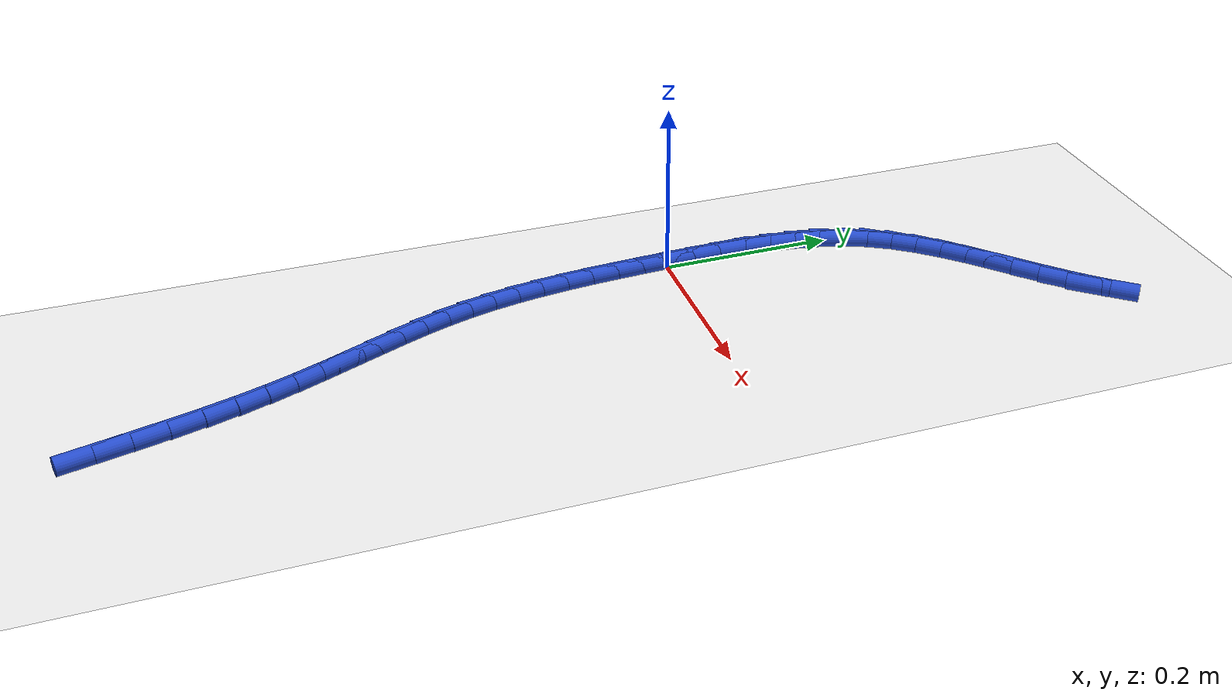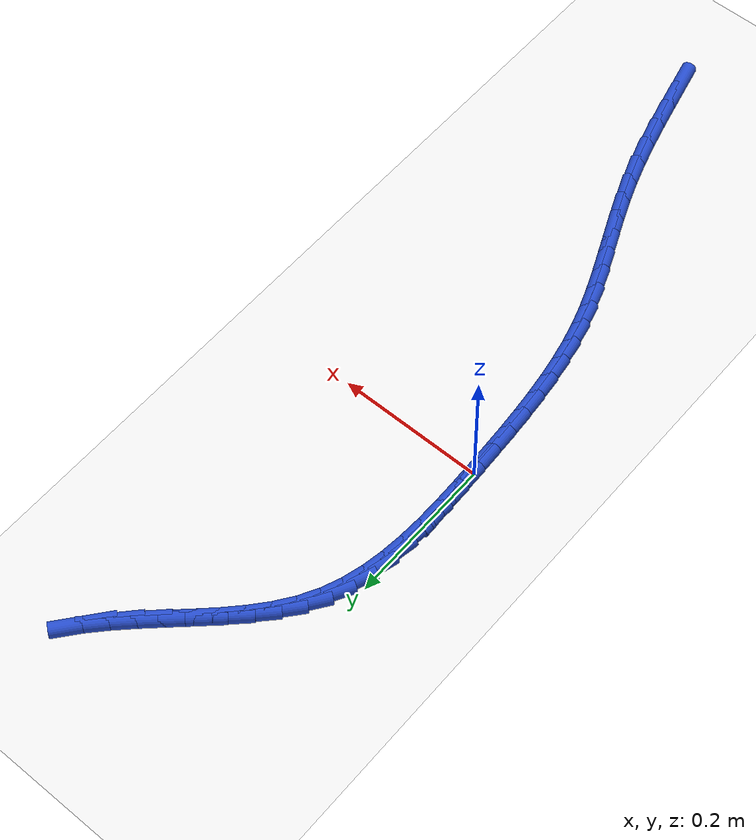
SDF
<sdf version="1.6">
 <world name="default">
  <model name="ground_plane">
   <static>1</static>
   <link name="link">
    <collision name="collision">
     <geometry><plane><normal>0 0 1</normal><size>100 100</size></plane></geometry>
     <surface><friction><ode><mu>100</mu><mu2>50</mu2></ode></friction></surface>
    </collision>
    <visual name="visual">
     <cast_shadows>0</cast_shadows>
     <geometry><plane><normal>0 0 1</normal><size>100 100</size></plane></geometry>
     <material>
      <script><uri>file://media/materials/scripts/gazebo.material</uri><name>Gazebo/WhiteGlow</name></script>
     </material>
    </visual>
   </link>
  </model>
  <model name="line">
   <link name="link_0">
    <pose>-1.3877787807814457e-17 -2.0816681711721685e-17 0.01 0 1.57 -1.5352226117898293</pose>
    <collision name="collision">
     <geometry><cylinder><radius>0.01</radius><length>0.08</length></cylinder></geometry>
    </collision>
    <visual name="visual">
     <material>
      <script><name>Gazebo/Blue</name><uri>file://media/materials/scripts/gazebo.material</uri></script>
     </material>
     <geometry><cylinder><radius>0.01</radius><length>0.08</length></cylinder></geometry>
    </visual>
   </link>
   <link name="link_1">
    <pose>-0.001136323410570814 0.0319293060891615 0.01 0 1.57 -1.5522565801094093</pose>
    <collision name="collision">
     <geometry><cylinder><radius>0.01</radius><length>0.08</length></cylinder></geometry>
    </collision>
    <visual name="visual">
     <material>
      <script><name>Gazebo/Blue</name><uri>file://media/materials/scripts/gazebo.material</uri></script>
     </material>
     <geometry><cylinder><radius>0.01</radius><length>0.08</length></cylinder></geometry>
    </visual>
   </link>
   <link name="link_2">
    <pose>-0.001728566261842261 0.06387014131679172 0.01 0 1.57 1.5598440946815808</pose>
    <collision name="collision">
     <geometry><cylinder><radius>0.01</radius><length>0.08</length></cylinder></geometry>
    </collision>
    <visual name="visual">
     <material>
      <script><name>Gazebo/Blue</name><uri>file://media/materials/scripts/gazebo.material</uri></script>
     </material>
     <geometry><cylinder><radius>0.01</radius><length>0.08</length></cylinder></geometry>
    </visual>
   </link>
   <link name="link_3">
    <pose>-0.0013812105346205877 0.09558439234035589 0.01 0 1.57 1.5170083752851309</pose>
    <collision name="collision">
     <geometry><cylinder><radius>0.01</radius><length>0.08</length></cylinder></geometry>
    </collision>
    <visual name="visual">
     <material>
      <script><name>Gazebo/Blue</name><uri>file://media/materials/scripts/gazebo.material</uri></script>
     </material>
     <geometry><cylinder><radius>0.01</radius><length>0.08</length></cylinder></geometry>
    </visual>
   </link>
   <link name="link_4">
    <pose>0.00030126179028797627 0.12683394581731922 0.01 0 1.57 1.459523945433175</pose>
    <collision name="collision">
     <geometry><cylinder><radius>0.01</radius><length>0.08</length></cylinder></geometry>
    </collision>
    <visual name="visual">
     <material>
      <script><name>Gazebo/Blue</name><uri>file://media/materials/scripts/gazebo.material</uri></script>
     </material>
     <geometry><cylinder><radius>0.01</radius><length>0.08</length></cylinder></geometry>
    </visual>
   </link>
   <link name="link_5">
    <pose>0.0037143687320771966 0.15738068840514685 0.01 0 1.57 1.3858344620848655</pose>
    <collision name="collision">
     <geometry><cylinder><radius>0.01</radius><length>0.08</length></cylinder></geometry>
    </collision>
    <visual name="visual">
     <material>
      <script><name>Gazebo/Blue</name><uri>file://media/materials/scripts/gazebo.material</uri></script>
     </material>
     <geometry><cylinder><radius>0.01</radius><length>0.08</length></cylinder></geometry>
    </visual>
   </link>
   <link name="link_6">
    <pose>0.00925362830994085 0.18698650676130396 0.01 0 1.57 1.2944819344400007</pose>
    <collision name="collision">
     <geometry><cylinder><radius>0.01</radius><length>0.08</length></cylinder></geometry>
    </collision>
    <visual name="visual">
     <material>
      <script><name>Gazebo/Blue</name><uri>file://media/materials/scripts/gazebo.material</uri></script>
     </material>
     <geometry><cylinder><radius>0.01</radius><length>0.08</length></cylinder></geometry>
    </visual>
   </link>
   <link name="link_7">
    <pose>0.0173145585430727 0.21541328754325575 0.01 0 1.57 1.1847402585053743</pose>
    <collision name="collision">
     <geometry><cylinder><radius>0.01</radius><length>0.08</length></cylinder></geometry>
    </collision>
    <visual name="visual">
     <material>
      <script><name>Gazebo/Blue</name><uri>file://media/materials/scripts/gazebo.material</uri></script>
     </material>
     <geometry><cylinder><radius>0.01</radius><length>0.08</length></cylinder></geometry>
    </visual>
   </link>
   <link name="link_8">
    <pose>0.02829267745066652 0.24242291740846747 0.01 0 1.57 1.0603880104524492</pose>
    <collision name="collision">
     <geometry><cylinder><radius>0.01</radius><length>0.08</length></cylinder></geometry>
    </collision>
    <visual name="visual">
     <material>
      <script><name>Gazebo/Blue</name><uri>file://media/materials/scripts/gazebo.material</uri></script>
     </material>
     <geometry><cylinder><radius>0.01</radius><length>0.08</length></cylinder></geometry>
    </visual>
   </link>
   <link name="link_9">
    <pose>0.0425114001692829 0.26781825942759047 0.01 0 1.57 0.9483036169660058</pose>
    <collision name="collision">
     <geometry><cylinder><radius>0.01</radius><length>0.08</length></cylinder></geometry>
    </collision>
    <visual name="visual">
     <material>
      <script><name>Gazebo/Blue</name><uri>file://media/materials/scripts/gazebo.material</uri></script>
     </material>
     <geometry><cylinder><radius>0.01</radius><length>0.08</length></cylinder></geometry>
    </visual>
   </link>
   <link name="link_10">
    <pose>0.05968537244002771 0.2917481432314513 0.01 0 1.57 0.8620050192902241</pose>
    <collision name="collision">
     <geometry><cylinder><radius>0.01</radius><length>0.08</length></cylinder></geometry>
    </collision>
    <visual name="visual">
     <material>
      <script><name>Gazebo/Blue</name><uri>file://media/materials/scripts/gazebo.material</uri></script>
     </material>
     <geometry><cylinder><radius>0.01</radius><length>0.08</length></cylinder></geometry>
    </visual>
   </link>
   <link name="link_11">
    <pose>0.07922357982822038 0.3145351065912478 0.01 0 1.57 0.8006190132701884</pose>
    <collision name="collision">
     <geometry><cylinder><radius>0.01</radius><length>0.08</length></cylinder></geometry>
    </collision>
    <visual name="visual">
     <material>
      <script><name>Gazebo/Blue</name><uri>file://media/materials/scripts/gazebo.material</uri></script>
     </material>
     <geometry><cylinder><radius>0.01</radius><length>0.08</length></cylinder></geometry>
    </visual>
   </link>
   <link name="link_12">
    <pose>0.10053270528436065 0.33650299586519655 0.01 0 1.57 0.7623340318087835</pose>
    <collision name="collision">
     <geometry><cylinder><radius>0.01</radius><length>0.08</length></cylinder></geometry>
    </collision>
    <visual name="visual">
     <material>
      <script><name>Gazebo/Blue</name><uri>file://media/materials/scripts/gazebo.material</uri></script>
     </material>
     <geometry><cylinder><radius>0.01</radius><length>0.08</length></cylinder></geometry>
    </visual>
   </link>
   <link name="link_13">
    <pose>0.12301943175894825 0.35797565741151466 0.01 0 1.57 0.7455356103986092</pose>
    <collision name="collision">
     <geometry><cylinder><radius>0.01</radius><length>0.08</length></cylinder></geometry>
    </collision>
    <visual name="visual">
     <material>
      <script><name>Gazebo/Blue</name><uri>file://media/materials/scripts/gazebo.material</uri></script>
     </material>
     <geometry><cylinder><radius>0.01</radius><length>0.08</length></cylinder></geometry>
    </visual>
   </link>
   <link name="link_14">
    <pose>0.14609044220248293 0.37927693758841907 0.01 0 1.57 0.7492865835895974</pose>
    <collision name="collision">
     <geometry><cylinder><radius>0.01</radius><length>0.08</length></cylinder></geometry>
    </collision>
    <visual name="visual">
     <material>
      <script><name>Gazebo/Blue</name><uri>file://media/materials/scripts/gazebo.material</uri></script>
     </material>
     <geometry><cylinder><radius>0.01</radius><length>0.08</length></cylinder></geometry>
    </visual>
   </link>
   <link name="link_15">
    <pose>0.1691524195654644 0.4007306827541263 0.01 0 1.57 0.7734686889386954</pose>
    <collision name="collision">
     <geometry><cylinder><radius>0.01</radius><length>0.08</length></cylinder></geometry>
    </collision>
    <visual name="visual">
     <material>
      <script><name>Gazebo/Blue</name><uri>file://media/materials/scripts/gazebo.material</uri></script>
     </material>
     <geometry><cylinder><radius>0.01</radius><length>0.08</length></cylinder></geometry>
    </visual>
   </link>
   <link name="link_16">
    <pose>0.19161204679839247 0.42266073926685366 0.01 0 1.57 0.818714202508982</pose>
    <collision name="collision">
     <geometry><cylinder><radius>0.01</radius><length>0.08</length></cylinder></geometry>
    </collision>
    <visual name="visual">
     <material>
      <script><name>Gazebo/Blue</name><uri>file://media/materials/scripts/gazebo.material</uri></script>
     </material>
     <geometry><cylinder><radius>0.01</radius><length>0.08</length></cylinder></geometry>
    </visual>
   </link>
   <link name="link_17">
    <pose>0.21287600685176686 0.44539095348481805 0.01 0 1.57 0.8861252138588503</pose>
    <collision name="collision">
     <geometry><cylinder><radius>0.01</radius><length>0.08</length></cylinder></geometry>
    </collision>
    <visual name="visual">
     <material>
      <script><name>Gazebo/Blue</name><uri>file://media/materials/scripts/gazebo.material</uri></script>
     </material>
     <geometry><cylinder><radius>0.01</radius><length>0.08</length></cylinder></geometry>
    </visual>
   </link>
   <link name="link_229">
    <pose>0.16515125983142878 -0.6381545841234288 0.01 0 1.57 -1.3394345069656612</pose>
    <collision name="collision">
     <geometry><cylinder><radius>0.01</radius><length>0.08</length></cylinder></geometry>
    </collision>
    <visual name="visual">
     <material>
      <script><name>Gazebo/Blue</name><uri>file://media/materials/scripts/gazebo.material</uri></script>
     </material>
     <geometry><cylinder><radius>0.01</radius><length>0.08</length></cylinder></geometry>
    </visual>
   </link>
   <link name="link_230">
    <pose>0.15671319338873946 -0.6023363666139996 0.01 0 1.57 -1.3305966678972605</pose>
    <collision name="collision">
     <geometry><cylinder><radius>0.01</radius><length>0.08</length></cylinder></geometry>
    </collision>
    <visual name="visual">
     <material>
      <script><name>Gazebo/Blue</name><uri>file://media/materials/scripts/gazebo.material</uri></script>
     </material>
     <geometry><cylinder><radius>0.01</radius><length>0.08</length></cylinder></geometry>
    </visual>
   </link>
   <link name="link_231">
    <pose>0.14802790289141643 -0.5668758278491823 0.01 0 1.57 -1.3134153081161946</pose>
    <collision name="collision">
     <geometry><cylinder><radius>0.01</radius><length>0.08</length></cylinder></geometry>
    </collision>
    <visual name="visual">
     <material>
      <script><name>Gazebo/Blue</name><uri>file://media/materials/scripts/gazebo.material</uri></script>
     </material>
     <geometry><cylinder><radius>0.01</radius><length>0.08</length></cylinder></geometry>
    </visual>
   </link>
   <link name="link_232">
    <pose>0.13889047144029207 -0.5321616710931962 0.01 0 1.57 -1.2869859298985347</pose>
    <collision name="collision">
     <geometry><cylinder><radius>0.01</radius><length>0.08</length></cylinder></geometry>
    </collision>
    <visual name="visual">
     <material>
      <script><name>Gazebo/Blue</name><uri>file://media/materials/scripts/gazebo.material</uri></script>
     </material>
     <geometry><cylinder><radius>0.01</radius><length>0.08</length></cylinder></geometry>
    </visual>
   </link>
   <link name="link_233">
    <pose>0.1290959821361988 -0.49858259961025986 0.01 0 1.57 -1.250235931841981</pose>
    <collision name="collision">
     <geometry><cylinder><radius>0.01</radius><length>0.08</length></cylinder></geometry>
    </collision>
    <visual name="visual">
     <material>
      <script><name>Gazebo/Blue</name><uri>file://media/materials/scripts/gazebo.material</uri></script>
     </material>
     <geometry><cylinder><radius>0.01</radius><length>0.08</length></cylinder></geometry>
    </visual>
   </link>
   <link name="link_234">
    <pose>0.11844902601637898 -0.4665145613797575 0.01 0 1.57 -1.2115032776305428</pose>
    <collision name="collision">
     <geometry><cylinder><radius>0.01</radius><length>0.08</length></cylinder></geometry>
    </collision>
    <visual name="visual">
     <material>
      <script><name>Gazebo/Blue</name><uri>file://media/materials/scripts/gazebo.material</uri></script>
     </material>
     <geometry><cylinder><radius>0.01</radius><length>0.08</length></cylinder></geometry>
    </visual>
   </link>
   <link name="link_235">
    <pose>0.10699287646511152 -0.4360133022688318 0.01 0 1.57 -1.1818827054832348</pose>
    <collision name="collision">
     <geometry><cylinder><radius>0.01</radius><length>0.08</length></cylinder></geometry>
    </collision>
    <visual name="visual">
     <material>
      <script><name>Gazebo/Blue</name><uri>file://media/materials/scripts/gazebo.material</uri></script>
     </material>
     <geometry><cylinder><radius>0.01</radius><length>0.08</length></cylinder></geometry>
    </visual>
   </link>
   <link name="link_236">
    <pose>0.0950211591096478 -0.40679871039058785 0.01 0 1.57 -1.1633376818816237</pose>
    <collision name="collision">
     <geometry><cylinder><radius>0.01</radius><length>0.08</length></cylinder></geometry>
    </collision>
    <visual name="visual">
     <material>
      <script><name>Gazebo/Blue</name><uri>file://media/materials/scripts/gazebo.material</uri></script>
     </material>
     <geometry><cylinder><radius>0.01</radius><length>0.08</length></cylinder></geometry>
    </visual>
   </link>
   <link name="link_237">
    <pose>0.08283934316016377 -0.3785747852081489 0.01 0 1.57 -1.1570940430093681</pose>
    <collision name="collision">
     <geometry><cylinder><radius>0.01</radius><length>0.08</length></cylinder></geometry>
    </collision>
    <visual name="visual">
     <material>
      <script><name>Gazebo/Blue</name><uri>file://media/materials/scripts/gazebo.material</uri></script>
     </material>
     <geometry><cylinder><radius>0.01</radius><length>0.08</length></cylinder></geometry>
    </visual>
   </link>
   <link name="link_238">
    <pose>0.07075289782683543 -0.3510455261846379 0.01 0 1.57 -1.1640933828370283</pose>
    <collision name="collision">
     <geometry><cylinder><radius>0.01</radius><length>0.08</length></cylinder></geometry>
    </collision>
    <visual name="visual">
     <material>
      <script><name>Gazebo/Blue</name><uri>file://media/materials/scripts/gazebo.material</uri></script>
     </material>
     <geometry><cylinder><radius>0.01</radius><length>0.08</length></cylinder></geometry>
    </visual>
   </link>
   <link name="link_239">
    <pose>0.05906729231983877 -0.32391493278317796 0.01 0 1.57 -1.1849390448844546</pose>
    <collision name="collision">
     <geometry><cylinder><radius>0.01</radius><length>0.08</length></cylinder></geometry>
    </collision>
    <visual name="visual">
     <material>
      <script><name>Gazebo/Blue</name><uri>file://media/materials/scripts/gazebo.material</uri></script>
     </material>
     <geometry><cylinder><radius>0.01</radius><length>0.08</length></cylinder></geometry>
    </visual>
   </link>
   <link name="link_240">
    <pose>0.04808799584935006 -0.296887004466893 0.01 0 1.57 -1.2197923870004315</pose>
    <collision name="collision">
     <geometry><cylinder><radius>0.01</radius><length>0.08</length></cylinder></geometry>
    </collision>
    <visual name="visual">
     <material>
      <script><name>Gazebo/Blue</name><uri>file://media/materials/scripts/gazebo.material</uri></script>
     </material>
     <geometry><cylinder><radius>0.01</radius><length>0.08</length></cylinder></geometry>
    </visual>
   </link>
   <link name="link_241">
    <pose>0.038120477625544685 -0.2696657406989045 0.01 0 1.57 -1.2681721391452896</pose>
    <collision name="collision">
     <geometry><cylinder><radius>0.01</radius><length>0.08</length></cylinder></geometry>
    </collision>
    <visual name="visual">
     <material>
      <script><name>Gazebo/Blue</name><uri>file://media/materials/scripts/gazebo.material</uri></script>
     </material>
     <geometry><cylinder><radius>0.01</radius><length>0.08</length></cylinder></geometry>
    </visual>
   </link>
   <link name="link_242">
    <pose>0.029469099777200792 -0.24195596143903356 0.01 0 1.57 -1.3231106526434069</pose>
    <collision name="collision">
     <geometry><cylinder><radius>0.01</radius><length>0.08</length></cylinder></geometry>
    </collision>
    <visual name="visual">
     <material>
      <script><name>Gazebo/Blue</name><uri>file://media/materials/scripts/gazebo.material</uri></script>
     </material>
     <geometry><cylinder><radius>0.01</radius><length>0.08</length></cylinder></geometry>
    </visual>
   </link>
   <link name="link_243">
    <pose>0.022291265118899155 -0.21357140332852342 0.01 0 1.57 -1.372279925347391</pose>
    <collision name="collision">
     <geometry><cylinder><radius>0.01</radius><length>0.08</length></cylinder></geometry>
    </collision>
    <visual name="visual">
     <material>
      <script><name>Gazebo/Blue</name><uri>file://media/materials/scripts/gazebo.material</uri></script>
     </material>
     <geometry><cylinder><radius>0.01</radius><length>0.08</length></cylinder></geometry>
    </visual>
   </link>
   <link name="link_244">
    <pose>0.016451684319015905 -0.1845427273826671 0.01 0 1.57 -1.4143590798178332</pose>
    <collision name="collision">
     <geometry><cylinder><radius>0.01</radius><length>0.08</length></cylinder></geometry>
    </collision>
    <visual name="visual">
     <material>
      <script><name>Gazebo/Blue</name><uri>file://media/materials/scripts/gazebo.material</uri></script>
     </material>
     <geometry><cylinder><radius>0.01</radius><length>0.08</length></cylinder></geometry>
    </visual>
   </link>
   <link name="link_245">
    <pose>0.011780401474934912 -0.15492628722351345 0.01 0 1.57 -1.4495628515539019</pose>
    <collision name="collision">
     <geometry><cylinder><radius>0.01</radius><length>0.08</length></cylinder></geometry>
    </collision>
    <visual name="visual">
     <material>
      <script><name>Gazebo/Blue</name><uri>file://media/materials/scripts/gazebo.material</uri></script>
     </material>
     <geometry><cylinder><radius>0.01</radius><length>0.08</length></cylinder></geometry>
    </visual>
   </link>
   <link name="link_246">
    <pose>0.008107460684040071 -0.12477843647311151 0.01 0 1.57 -1.4781723558065563</pose>
    <collision name="collision">
     <geometry><cylinder><radius>0.01</radius><length>0.08</length></cylinder></geometry>
    </collision>
    <visual name="visual">
     <material>
      <script><name>Gazebo/Blue</name><uri>file://media/materials/scripts/gazebo.material</uri></script>
     </material>
     <geometry><cylinder><radius>0.01</radius><length>0.08</length></cylinder></geometry>
    </visual>
   </link>
   <link name="link_247">
    <pose>0.005262906043715276 -0.09415552875351027 0.01 0 1.57 -1.5004868031383956</pose>
    <collision name="collision">
     <geometry><cylinder><radius>0.01</radius><length>0.08</length></cylinder></geometry>
    </collision>
    <visual name="visual">
     <material>
      <script><name>Gazebo/Blue</name><uri>file://media/materials/scripts/gazebo.material</uri></script>
     </material>
     <geometry><cylinder><radius>0.01</radius><length>0.08</length></cylinder></geometry>
    </visual>
   </link>
   <link name="link_248">
    <pose>0.0030767816513444035 -0.06311391768675857 0.01 0 1.57 -1.5167904241428753</pose>
    <collision name="collision">
     <geometry><cylinder><radius>0.01</radius><length>0.08</length></cylinder></geometry>
    </collision>
    <visual name="visual">
     <material>
      <script><name>Gazebo/Blue</name><uri>file://media/materials/scripts/gazebo.material</uri></script>
     </material>
     <geometry><cylinder><radius>0.01</radius><length>0.08</length></cylinder></geometry>
    </visual>
   </link>
   <link name="link_249">
    <pose>0.001379131604311341 -0.03170995689490543 0.01 0 1.57 -1.5273316502454708</pose>
    <collision name="collision">
     <geometry><cylinder><radius>0.01</radius><length>0.08</length></cylinder></geometry>
    </collision>
    <visual name="visual">
     <material>
      <script><name>Gazebo/Blue</name><uri>file://media/materials/scripts/gazebo.material</uri></script>
     </material>
     <geometry><cylinder><radius>0.01</radius><length>0.08</length></cylinder></geometry>
    </visual>
   </link>
   <link name="link_250">
    <pose>-2.2985086056692694e-17 1.8735013540549517e-16 0.01 0 1.57 -1.5323114426943556</pose>
    <collision name="collision">
     <geometry><cylinder><radius>0.01</radius><length>0.08</length></cylinder></geometry>
    </collision>
    <visual name="visual">
     <material>
      <script><name>Gazebo/Blue</name><uri>file://media/materials/scripts/gazebo.material</uri></script>
     </material>
     <geometry><cylinder><radius>0.01</radius><length>0.08</length></cylinder></geometry>
    </visual>
   </link>
   <link name="link_251">
    <pose>-0.0012305690642058042 0.031959599375909385 0.01 0 1.57 -1.5318781969226702</pose>
    <collision name="collision">
     <geometry><cylinder><radius>0.01</radius><length>0.08</length></cylinder></geometry>
    </collision>
    <visual name="visual">
     <material>
      <script><name>Gazebo/Blue</name><uri>file://media/materials/scripts/gazebo.material</uri></script>
     </material>
     <geometry><cylinder><radius>0.01</radius><length>0.08</length></cylinder></geometry>
    </visual>
   </link>
   <link name="link_252">
    <pose>-0.002482531490922116 0.06411248761077316 0.01 0 1.57 -1.5320941649082964</pose>
    <collision name="collision">
     <geometry><cylinder><radius>0.01</radius><length>0.08</length></cylinder></geometry>
    </collision>
    <visual name="visual">
     <material>
      <script><name>Gazebo/Blue</name><uri>file://media/materials/scripts/gazebo.material</uri></script>
     </material>
     <geometry><cylinder><radius>0.01</radius><length>0.08</length></cylinder></geometry>
    </visual>
   </link>
  </model>
 </world>
</sdf>
